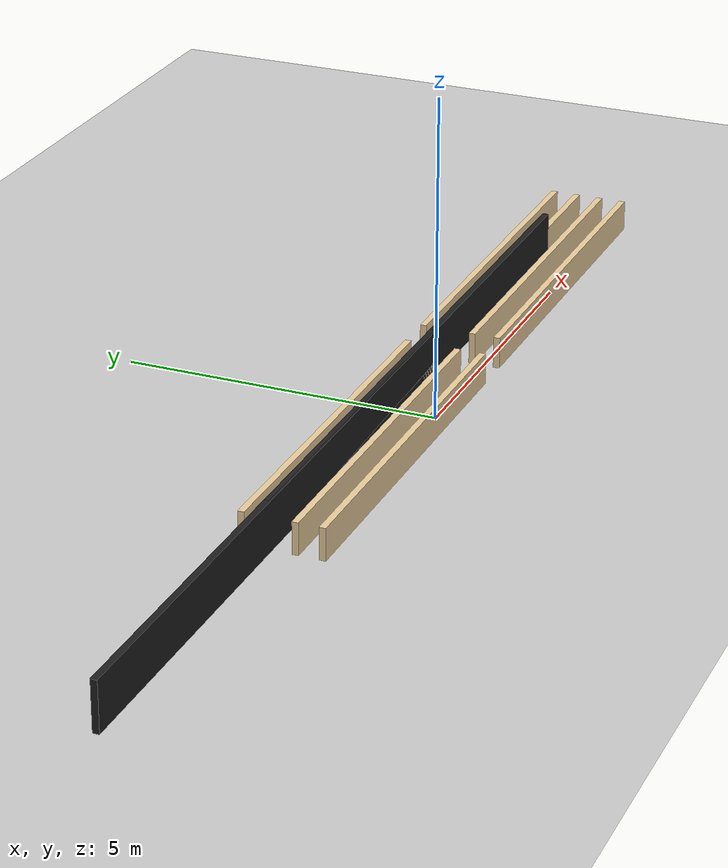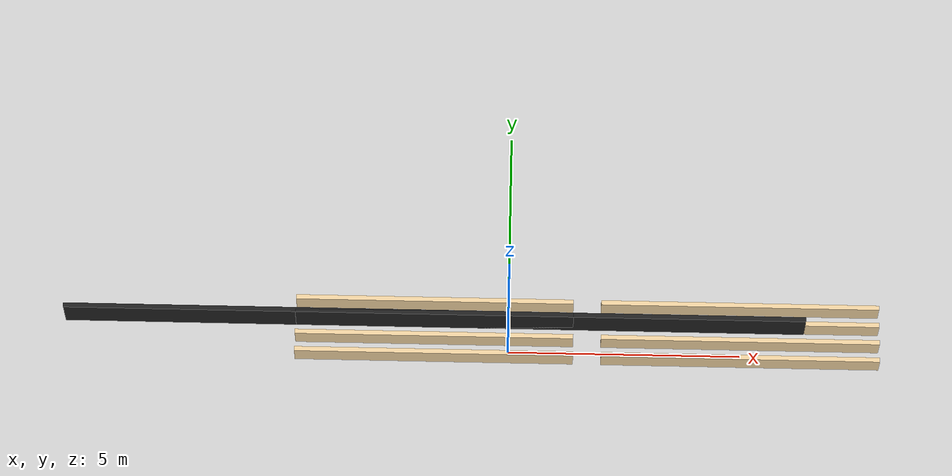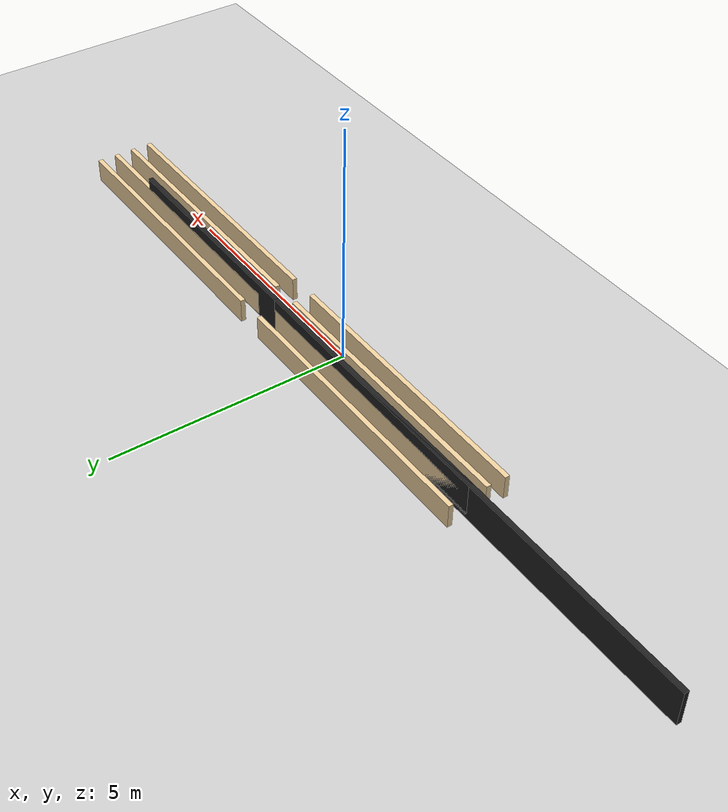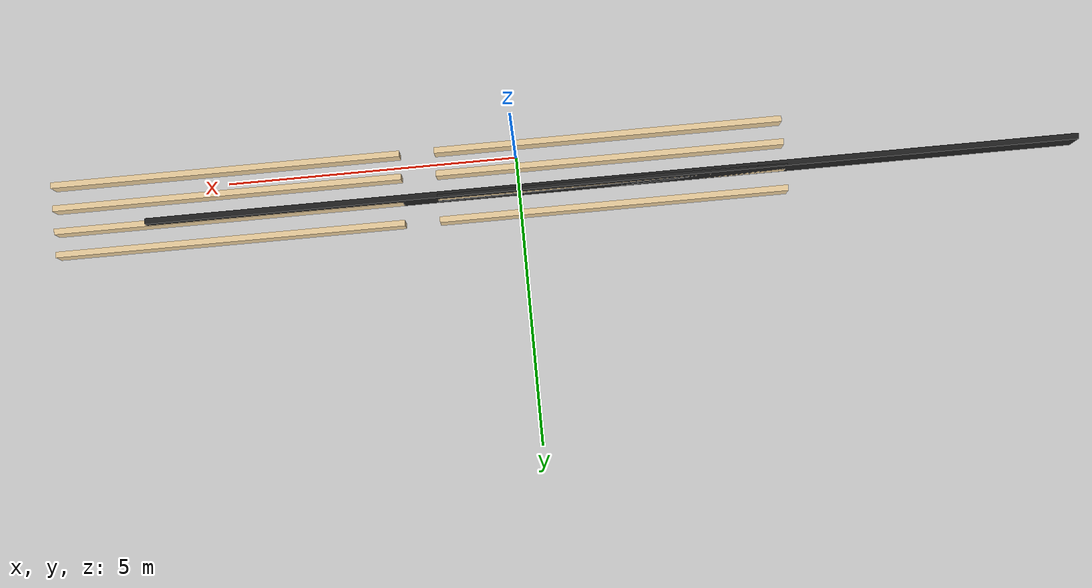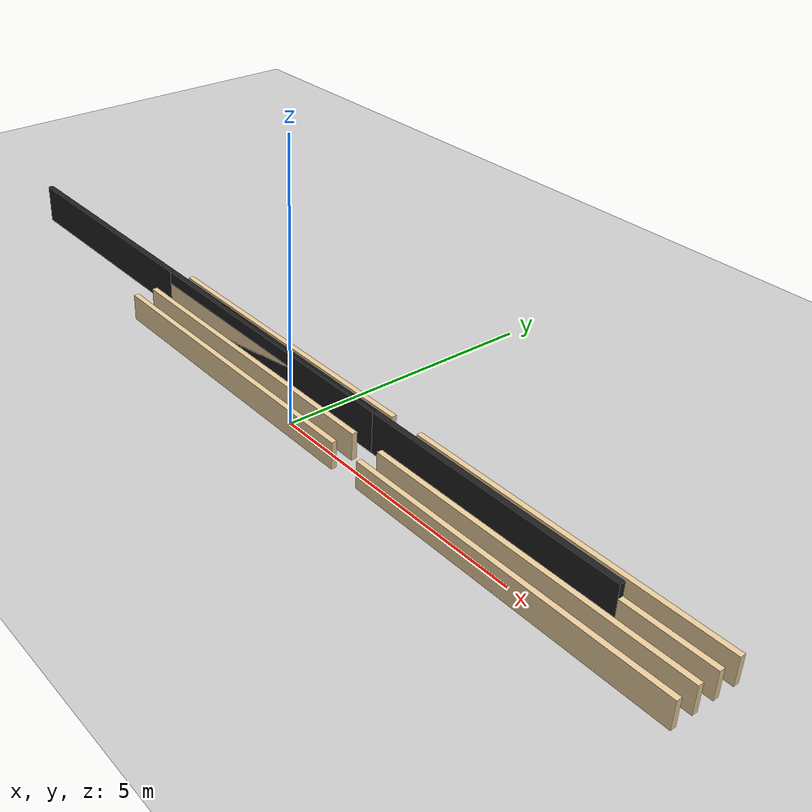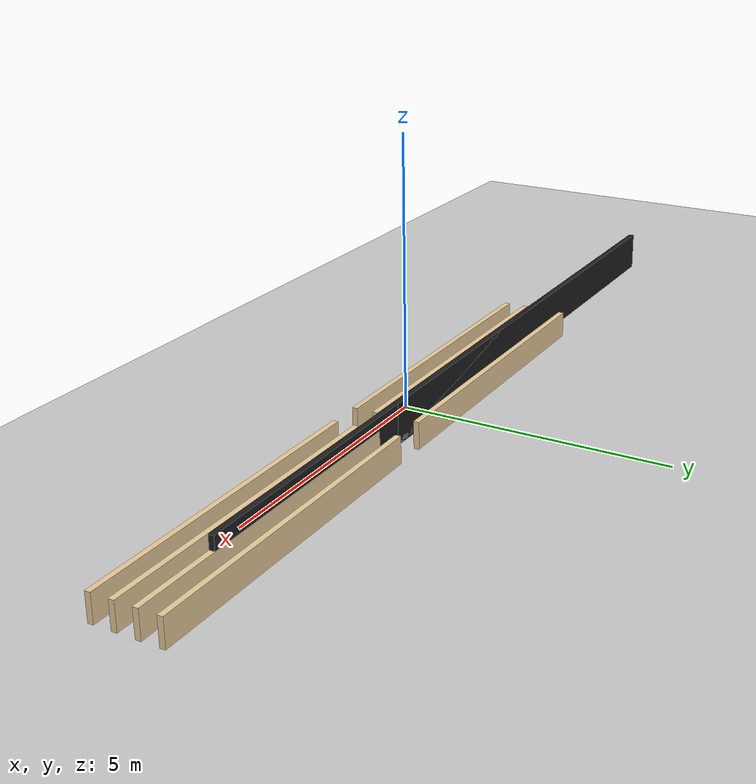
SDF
<sdf version="1.7">
 <world name="default">
  <light name="sun" type="directional">
   <pose>0 0 10 0 -0 0</pose>
   <diffuse>0.8 0.8 0.8 1</diffuse>
   <specular>0.2 0.2 0.2 1</specular>
   <attenuation>
    <range>1000</range>
    <constant>0.9</constant>
    <linear>0.01</linear>
    <quadratic>0.001</quadratic>
   </attenuation>
   <direction>-0.5 0.1 -0.9</direction>
   <spot><inner_angle>0</inner_angle><outer_angle>0</outer_angle><falloff>0</falloff></spot>
  </light>
  <model name="ground_plane">
   <static>1</static>
   <link name="link">
    <collision name="collision">
     <geometry><plane><normal>0 0 1</normal><size>100 100</size></plane></geometry>
     <surface>
      <contact><collide_bitmask>65535</collide_bitmask></contact>
      <friction><ode><mu>100</mu><mu2>50</mu2></ode></friction>
     </surface>
    </collision>
    <visual name="visual">
     <cast_shadows>0</cast_shadows>
     <geometry><plane><normal>0 0 1</normal><size>100 100</size></plane></geometry>
     <material>
      <script><uri>file://media/materials/scripts/gazebo.material</uri><name>Gazebo/Grey</name></script>
     </material>
    </visual>
   </link>
  </model>
  <gravity>0 0 -9.8</gravity>
  <magnetic_field>6e-06 2.3e-05 -4.2e-05</magnetic_field>
  <atmosphere type="adiabatic"/>
  <physics type="ode">
   <max_step_size>0.001</max_step_size>
   <real_time_factor>1</real_time_factor>
   <real_time_update_rate>1000</real_time_update_rate>
  </physics>
  <scene><ambient>0.4 0.4 0.4 1</ambient><background>0.7 0.7 0.7 1</background><shadows>1</shadows></scene>
  <spherical_coordinates>
   <surface_model>EARTH_WGS84</surface_model>
   <latitude_deg>0</latitude_deg>
   <longitude_deg>0</longitude_deg>
   <elevation>0</elevation>
   <heading_deg>0</heading_deg>
  </spherical_coordinates>
  <model name="cool">
   <pose>-1e-05 0.4 0 0 -0 0</pose>
   <link name="Wall_11">
    <collision name="Wall_11_Collision">
     <geometry><box><size>6 0.1 0.5</size></box></geometry>
     <pose>0 0 0.25 0 -0 0</pose>
    </collision>
    <visual name="Wall_11_Visual">
     <pose>0 0 0.25 0 -0 0</pose>
     <geometry><box><size>6 0.1 0.5</size></box></geometry>
     <material>
      <script><uri>file://media/materials/scripts/gazebo.material</uri><name>Gazebo/Grey</name></script>
      <ambient>0.921569 0.807843 0.615686 1</ambient>
     </material>
     <meta><layer>0</layer></meta>
    </visual>
    <pose>-1.59999 0.6 0 0 -0 0</pose>
   </link>
   <link name="Wall_13">
    <collision name="Wall_13_Collision">
     <geometry><box><size>6 0.1 0.5</size></box></geometry>
     <pose>0 0 0.25 0 -0 0</pose>
    </collision>
    <visual name="Wall_13_Visual">
     <pose>0 0 0.25 0 -0 0</pose>
     <geometry><box><size>6 0.1 0.5</size></box></geometry>
     <material>
      <script><uri>file://media/materials/scripts/gazebo.material</uri><name>Gazebo/Grey</name></script>
      <ambient>0.921569 0.807843 0.615686 1</ambient>
     </material>
     <meta><layer>0</layer></meta>
    </visual>
    <pose>5.00001 0.6 0 0 -0 0</pose>
   </link>
   <link name="Wall_15">
    <collision name="Wall_15_Collision">
     <geometry><box><size>6 0.1 0.5</size></box></geometry>
     <pose>0 0 0.25 0 -0 0</pose>
    </collision>
    <visual name="Wall_15_Visual">
     <pose>0 0 0.25 0 -0 0</pose>
     <geometry><box><size>6 0.1 0.5</size></box></geometry>
     <material>
      <script><uri>file://media/materials/scripts/gazebo.material</uri><name>Gazebo/Grey</name></script>
      <ambient>0.921569 0.807843 0.615686 1</ambient>
     </material>
     <meta><layer>0</layer></meta>
    </visual>
    <pose>5.00001 0.2 0 0 -0 0</pose>
   </link>
   <link name="Wall_17">
    <collision name="Wall_17_Collision">
     <geometry><box><size>6 0.1 0.5</size></box></geometry>
     <pose>0 0 0.25 0 -0 0</pose>
    </collision>
    <visual name="Wall_17_Visual">
     <pose>0 0 0.25 0 -0 0</pose>
     <geometry><box><size>6 0.1 0.5</size></box></geometry>
     <material>
      <script><uri>file://media/materials/scripts/gazebo.material</uri><name>Gazebo/Grey</name></script>
      <ambient>0.921569 0.807843 0.615686 1</ambient>
     </material>
     <meta><layer>0</layer></meta>
    </visual>
    <pose>5.00001 -0.2 0 0 -0 0</pose>
   </link>
   <link name="Wall_19">
    <collision name="Wall_19_Collision">
     <geometry><box><size>6 0.1 0.5</size></box></geometry>
     <pose>0 0 0.25 0 -0 0</pose>
    </collision>
    <visual name="Wall_19_Visual">
     <pose>0 0 0.25 0 -0 0</pose>
     <geometry><box><size>6 0.1 0.5</size></box></geometry>
     <material>
      <script><uri>file://media/materials/scripts/gazebo.material</uri><name>Gazebo/Grey</name></script>
      <ambient>0.921569 0.807843 0.615686 1</ambient>
     </material>
     <meta><layer>0</layer></meta>
    </visual>
    <pose>-1.59999 -0.6 0 0 -0 0</pose>
   </link>
   <link name="Wall_21">
    <collision name="Wall_21_Collision">
     <geometry><box><size>6 0.1 0.5</size></box></geometry>
     <pose>0 0 0.25 0 -0 0</pose>
    </collision>
    <visual name="Wall_21_Visual">
     <pose>0 0 0.25 0 -0 0</pose>
     <geometry><box><size>6 0.1 0.5</size></box></geometry>
     <material>
      <script><uri>file://media/materials/scripts/gazebo.material</uri><name>Gazebo/Grey</name></script>
      <ambient>0.921569 0.807843 0.615686 1</ambient>
     </material>
     <meta><layer>0</layer></meta>
    </visual>
    <pose>5.00001 -0.6 0 0 -0 0</pose>
   </link>
   <link name="Wall_7">
    <collision name="Wall_7_Collision">
     <geometry><box><size>6 0.1 0.5</size></box></geometry>
     <pose>0 0 0.25 0 -0 0</pose>
    </collision>
    <visual name="Wall_7_Visual">
     <pose>0 0 0.25 0 -0 0</pose>
     <geometry><box><size>6 0.1 0.5</size></box></geometry>
     <material>
      <script><uri>file://media/materials/scripts/gazebo.material</uri><name>Gazebo/Grey</name></script>
      <ambient>0.921569 0.807843 0.615686 1</ambient>
     </material>
     <meta><layer>0</layer></meta>
    </visual>
    <pose>-1.59999 -0.2 0 0 -0 0</pose>
   </link>
   <link name="Wall_9">
    <collision name="Wall_9_Collision">
     <geometry><box><size>6 0.1 0.5</size></box></geometry>
     <pose>0 0 0.25 0 -0 0</pose>
    </collision>
    <visual name="Wall_9_Visual">
     <pose>0 0 0.25 0 -0 0</pose>
     <geometry><box><size>6 0.1 0.5</size></box></geometry>
     <material>
      <script><uri>file://media/materials/scripts/gazebo.material</uri><name>Gazebo/Grey</name></script>
      <ambient>0.921569 0.807843 0.615686 1</ambient>
     </material>
     <meta><layer>0</layer></meta>
    </visual>
    <pose>-1.59999 0.1995 0 0 -0 -0.000417</pose>
   </link>
   <link name="Wall_1">
    <collision name="Wall_1_Collision">
     <geometry><box><size>16 0.1 1</size></box></geometry>
     <pose>0 0 0.25 0 -0 0</pose>
    </collision>
    <visual name="Wall_1_Visual">
     <pose>0 0 0.25 0 -0 0</pose>
     <geometry><box><size>16 0.1 1</size></box></geometry>
     <material>
      <script><uri>file://media/materials/scripts/gazebo.material</uri><name>Gazebo/Black</name></script>
      <ambient>1 1 1 1</ambient>
     </material>
     <meta><layer>0</layer></meta>
    </visual>
    <pose>-1.59999 0.1995 0 0 -0 -0.000417</pose>
   </link>
   <link name="Wall_2">
    <collision name="Wall_2_Collision">
     <geometry><box><size>6 0.1 1</size></box></geometry>
     <pose>0 0 0.25 0 -0 0</pose>
    </collision>
    <visual name="Wall_2_Visual">
     <pose>0 0 0.25 0 -0 0</pose>
     <geometry><box><size>6 0.1 1</size></box></geometry>
     <material>
      <script><uri>file://media/materials/scripts/gazebo.material</uri><name>Gazebo/Black</name></script>
      <ambient>1 1 1 1</ambient>
     </material>
     <meta><layer>0</layer></meta>
    </visual>
    <pose>-1.59999 0.1995 0 0 -0 -0.000417</pose>
   </link>
   <link name="Wall_3">
    <collision name="Wall_3_Collision">
     <geometry><box><size>6 0.1 1</size></box></geometry>
     <pose>0 0 0.25 0 -0 0</pose>
    </collision>
    <visual name="Wall_3_Visual">
     <pose>0 0 0.25 0 -0 0</pose>
     <geometry><box><size>6 0.1 1</size></box></geometry>
     <material>
      <script><uri>file://media/materials/scripts/gazebo.material</uri><name>Gazebo/Black</name></script>
      <ambient>1 1 1 1</ambient>
     </material>
     <meta><layer>0</layer></meta>
    </visual>
    <pose>-1.59999 0.1995 0 0 -0 -0.000417</pose>
   </link>
   <static>1</static>
  </model>
 </world>
</sdf>
